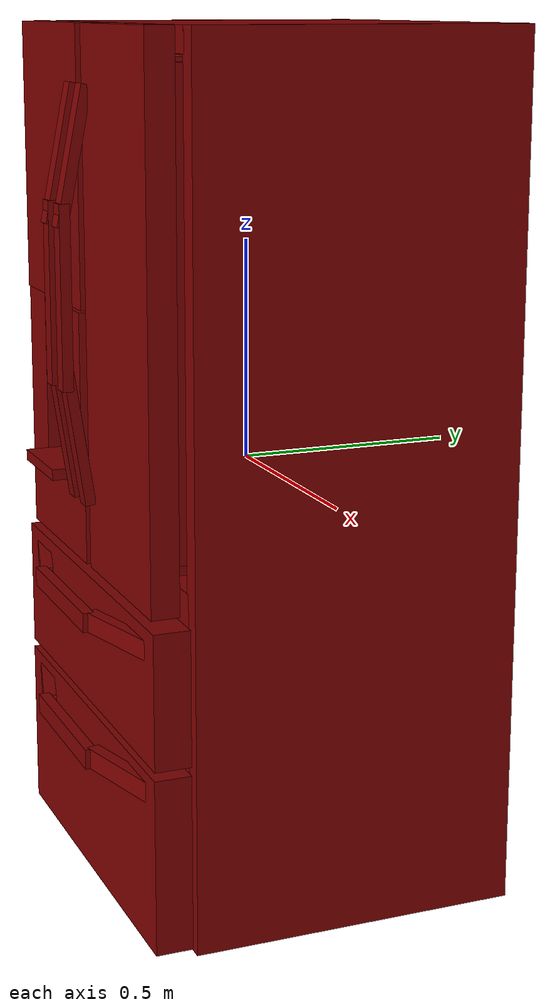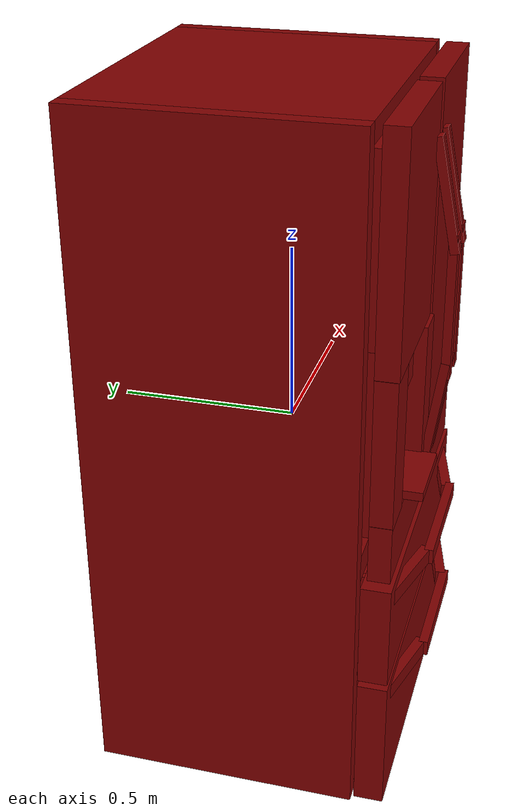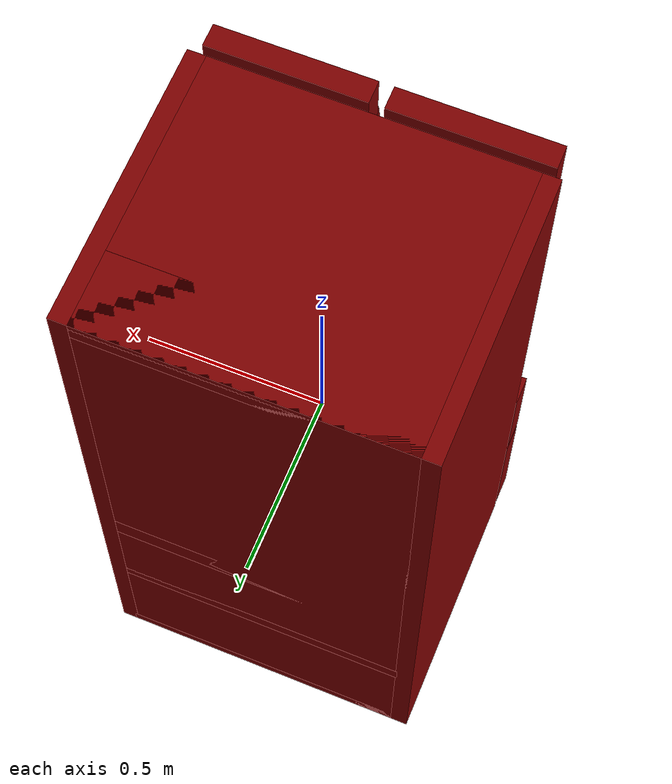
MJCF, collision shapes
<?xml version='1.0' encoding='UTF-8'?>
<mujoco model="model">
  <option timestep="0.002" gravity="0.0 0.0 -9.81"/>
  <compiler angle="radian"/>
  <asset>
    <mesh file="visuals/freezer0.obj" name="freezer0_vis"/>
    <mesh file="visuals/freezer1.obj" name="freezer1_vis"/>
    <mesh file="visuals/fridge_drawer0.obj" name="fridge_drawer0_vis"/>
    <mesh file="visuals/fridge_left_door.obj" name="fridge_left_door_vis"/>
    <mesh file="visuals/fridge_right_door.obj" name="fridge_right_door_vis"/>
    <mesh file="visuals/fridge_right_door_Clear.obj" name="fridge_right_door_Clear_vis"/>
    <mesh file="visuals/Body001.obj" name="Body001_vis"/>
    <mesh file="visuals/Body001_Clear.obj" name="Body001_Clear_vis"/>
    <texture file="visuals/T_BC001.png" name="Body001_material" type="2d"/>
    <material name="Body001_material" rgba="1 1 1 1.0" texture="Body001_material" shininess="0.1" specular="5"/>
    <texture file="visuals/T_BC001.png" name="freezer0_material" type="2d"/>
    <material name="freezer0_material" rgba="1 1 1 1.0" texture="freezer0_material" shininess="0.1" specular="5"/>
    <texture file="visuals/T_BC001.png" name="freezer1_material" type="2d"/>
    <material name="freezer1_material" rgba="1 1 1 1.0" texture="freezer1_material" shininess="0.1" specular="5"/>
    <texture file="visuals/T_BC001.png" name="fridge_drawer0_material" type="2d"/>
    <material name="fridge_drawer0_material" rgba="1 1 1 1.0" texture="fridge_drawer0_material" shininess="0.1" specular="5"/>
    <texture file="visuals/T_BC001.png" name="fridge_left_door_material" type="2d"/>
    <material name="fridge_left_door_material" rgba="1 1 1 1.0" texture="fridge_left_door_material" shininess="0.1" specular="5"/>
    <texture file="visuals/T_BC001.png" name="fridge_right_door_material" type="2d"/>
    <material name="fridge_right_door_material" rgba="1 1 1 1.0" texture="fridge_right_door_material" shininess="0.1" specular="5"/>
    <material name="fridge_right_door_Clear_material" rgba="0.7829207181930542 0.7829207181930542 0.7829207181930542 0.699999988079071" shininess="0.2512328028678894" specular="0.3103448502657381"/>
    <material name="Body001_Clear_material" rgba="0.7829207181930542 0.7829207181930542 0.7829207181930542 0.699999988079071" shininess="0.2512328028678894" specular="0.3103448502657381"/>
  </asset>
  <default>
    <default class="visual">
      <geom conaffinity="0" contype="0" group="1" type="mesh"/>
    </default>
    <default class="collision">
      <geom group="0" rgba="0.5 0 0 0.5"/>
    </default>
    <default class="spawn">
      <geom group="0" rgba="1 1 1 0.5" contype="0" conaffinity="0"/>
      <site group="0" rgba="1 1 1 0.5"/>
    </default>
    <default class="region">
      <geom group="1" conaffinity="0" contype="0" rgba="0 1 0 0"/>
    </default>
  </default>
  <worldbody>
    <body>
      <body name="object">
        <geom mesh="Body001_vis" type="mesh" solimp="0.998 0.998 0.001" solref="0.001 1" friction="0.95 0.3 0.1" class="visual" material="Body001_material"/>
        <geom class="collision" type="box" pos="0.0006654927274212241 0.05615266412496567 0.5888007879257202" size="0.40937232971191406 0.19231247901916504 0.005514178425073624" quat="1.0 0.0 0.0 0.0"/>
        <geom class="collision" type="box" pos="0.0006654927274212241 0.05615266412496567 0.20450350642204285" size="0.40937232971191406 0.19231247901916504 0.005514178425073624" quat="1.0 0.0 0.0 0.0"/>
        <geom class="collision" type="box" pos="-0.43239063024520874 0.0789387971162796 2.281851152474701e-09" size="0.025050994008779526 0.37569648027420044 0.9743537306785583" quat="1.0 0.0 0.0 0.0"/>
        <geom class="collision" type="box" pos="0.43343523144721985 0.0789387971162796 2.281851152474701e-09" size="0.024006403982639313 0.37569648027420044 0.9743537306785583" quat="1.0 0.0 0.0 0.0"/>
        <geom class="collision" type="box" pos="0.002809131983667612 0.35418015718460083 2.281851152474701e-09" size="0.4140954911708832 0.10045510530471802 0.9743537306785583" quat="1.0 0.0 0.0 0.0"/>
        <geom class="collision" type="box" pos="0.0028091389685869217 0.0789387971162796 0.9467322826385498" size="0.4140954911708832 0.37569648027420044 0.027621673420071602" quat="1.0 0.0 0.0 0.0"/>
        <geom class="collision" type="box" pos="0.002809138037264347 0.0789387971162796 -0.21230341494083405" size="0.4140954911708832 0.37569648027420044 0.038041457533836365" quat="1.0 0.0 0.0 0.0"/>
        <geom class="collision" type="box" pos="0.002809138037264347 0.0789387971162796 -0.5444928407669067" size="0.4140954911708832 0.37569648027420044 0.026665542274713516" quat="1.0 0.0 0.0 0.0"/>
        <geom class="collision" type="box" pos="0.0028091371059417725 0.0789387971162796 -0.9559710025787354" size="0.4140954911708832 0.37569648027420044 0.018382761627435684" quat="1.0 0.0 0.0 0.0"/>
        <geom class="collision" type="box" pos="-0.3977801501750946 0.03480931371450424 0.5585342645645142" size="0.0075620138086378574 0.22568455338478088 0.027275606989860535" quat="1.0 0.0 0.0 0.0"/>
        <geom class="collision" type="box" pos="-0.3977801501750946 0.02478325366973877 0.3838809132575989" size="0.0075620138086378574 0.23571060597896576 0.027275606989860535" quat="1.0 0.0 0.0 0.0"/>
        <geom class="collision" type="box" pos="-0.3977801501750946 0.02478325366973877 -0.0023946017026901245" size="0.0075620138086378574 0.23571060597896576 0.027275606989860535" quat="1.0 0.0 0.0 0.0"/>
        <geom class="collision" type="box" pos="-0.3977801501750946 0.02478324994444847 0.17225873470306396" size="0.0075620138086378574 0.23571060597896576 0.027275606989860535" quat="1.0 0.0 0.0 0.0"/>
        <geom class="collision" type="box" pos="0.39763379096984863 0.02478324994444847 0.17225873470306396" size="0.0075620138086378574 0.23571060597896576 0.027275606989860535" quat="1.0 0.0 0.0 0.0"/>
        <geom class="collision" type="box" pos="0.39763379096984863 0.02478325366973877 -0.0023946017026901245" size="0.0075620138086378574 0.23571060597896576 0.027275606989860535" quat="1.0 0.0 0.0 0.0"/>
        <geom class="collision" type="box" pos="0.39763379096984863 0.02478325366973877 0.3838809132575989" size="0.0075620138086378574 0.23571060597896576 0.027275606989860535" quat="1.0 0.0 0.0 0.0"/>
        <geom class="collision" type="box" pos="0.39763379096984863 0.03480931371450424 0.5585342645645142" size="0.0075620138086378574 0.22568455338478088 0.027275606989860535" quat="1.0 0.0 0.0 0.0"/>
        <geom class="collision" type="box" pos="0.0028091389685869217 -0.0073231663554906845 0.9188090562820435" size="0.1594373732805252 0.16066031157970428 0.00796419195830822" quat="1.0 0.0 0.0 0.0"/>
        <body name="freezer0">
          <geom class="region" name="reg_freezer0" type="box" pos="-0.0013597309589385986 -0.09237458184361458 -0.7517581582069397" size="0.34636629915237427 0.19313483855128288 0.16022856330871582"/>
          <joint axis="0.0 -1.0 0.0" pos="-5.4772979041217695e-08 -0.11758746206760406 -0.7575267553329468" limited="true" name="freezer0_door_joint" range="0.0 0.4" type="slide" damping="1" frictionloss="1" armature=".01" stiffness="0.05"/>
          <geom mesh="freezer0_vis" type="mesh" solimp="0.998 0.998 0.001" solref="0.001 1" friction="0.95 0.3 0.1" class="visual" material="freezer0_material"/>
          <geom class="collision" type="box" pos="0.0006083666230551898 -0.09320656955242157 -0.9239939451217651" size="0.35936403274536133 0.20855751633644104 0.0044151670299470425" quat="1.0 0.0 0.0 0.0"/>
          <geom class="collision" type="box" pos="0.3686133325099945 -0.06713901460170746 -0.7525335550308228" size="0.008640914224088192 0.2404424399137497 0.16708417236804962" quat="1.0 0.0 0.0 0.0"/>
          <geom class="collision" type="box" pos="-0.00023537719971500337 -0.3052603602409363 -0.7556809782981873" size="0.18085241317749023 0.3740488588809967 0.0035023794043809175" quat="0.4905640780925751 0.5092608332633972 -0.4905611574649811 0.5092642307281494"/>
          <geom class="collision" type="box" pos="-0.00023408143897540867 0.16065528988838196 -0.8216227889060974" size="0.11349354684352875 0.3740488588809967 0.003861266653984785" quat="0.37202736735343933 -0.6013256907463074 0.6013337969779968 0.37202250957489014"/>
          <geom class="collision" type="box" pos="-1.3189855962991714e-07 -0.34826090931892395 -0.7575268745422363" size="0.45744144916534424 0.04144240915775299 0.19901543855667114" quat="1.0 0.0 0.0 0.0" name="freezer0_door_main"/>
          <geom class="collision" type="box" pos="-0.0030822562985122204 -0.4421125054359436 -0.6056478023529053" size="0.18589089810848236 0.01306017767637968 0.02261965163052082" quat="1.0 0.0 0.0 0.0" name="freezer0_door_handle_main"/>
          <geom class="collision" type="box" pos="-0.30894798040390015 -0.39824309945106506 -0.6059889793395996" size="0.14072267711162567 0.014652024023234844 0.02227095142006874" quat="0.9923864603042603 0.0 0.0 -0.12316303700208664" name="freezer0_door_handle_1"/>
          <geom class="collision" type="box" pos="0.30305591225624084 -0.3985201418399811 -0.6056209802627563" size="0.14072267711162567 0.01493772678077221 0.022638944908976555" quat="0.9923864006996155 0.0 0.0 0.12316328287124634" name="freezer0_door_handle_2"/>
          <geom class="collision" type="box" pos="-0.3673965632915497 -0.06713901460170746 -0.7525335550308228" size="0.008640915155410767 0.24046066403388977 0.1672159731388092" quat="1.0 0.0 0.0 0.0"/>
          <geom class="collision" type="box" pos="0.0005800336366519332 0.21518729627132416 -0.6614482998847961" size="0.3721744120121002 0.005317181348800659 0.07658029347658157" quat="1.0 0.0 0.0 0.0"/>
        </body>
        <body name="freezer1">
          <geom class="region" name="reg_freezer1" type="box" pos="-0.0013597309589385986 -0.09237458184361458 -0.3810538202524185" size="0.34636629915237427 0.19313483855128288 0.1171111444234848"/>
          <joint axis="0.0 -1.0 0.0" pos="-2.463909076766413e-08 -0.1173470988869667 -0.38834065198898315" limited="true" name="freezer1_door_joint" range="0.0 0.4" type="slide" damping="1" frictionloss="1" armature=".01" stiffness="0.05"/>
          <geom mesh="freezer1_vis" type="mesh" solimp="0.998 0.998 0.001" solref="0.001 1" friction="0.95 0.3 0.1" class="visual" material="freezer1_material"/>
          <geom class="collision" type="box" pos="0.0 -0.34782081842422485 -0.388280987739563" size="0.45744162797927856 0.04100235179066658 0.1508244276046753" quat="1.0 0.0 0.0 0.0" name="freezer1_door_main"/>
          <geom class="collision" type="box" pos="-0.0030822562985122204 -0.4416618049144745 -0.28972965478897095" size="0.18589089810848236 0.012609447352588177 0.021864306181669235" quat="1.0 0.0 0.0 0.0" name="freezer1_door_handle_main"/>
          <geom class="collision" type="box" pos="-0.30886685848236084 -0.3979213237762451 -0.28972965478897095" size="0.14072267711162567 0.01432017795741558 0.021856945008039474" quat="0.9923864603042603 0.0 0.0 -0.12316303700208664" name="freezer1_door_handle_1"/>
          <geom class="collision" type="box" pos="0.30295634269714355 -0.39812520146369934 -0.28972965478897095" size="0.14072267711162567 0.014530442655086517 0.021856945008039474" quat="0.9923864006996155 0.0 0.0 0.12316328287124634" name="freezer1_door_handle_2"/>
          <geom class="collision" type="box" pos="-0.00023407801927533 0.1679583042860031 -0.4062451422214508" size="0.11459759622812271 0.3740488886833191 0.006074460688978434" quat="0.37202736735343933 -0.6013256907463074 0.6013337969779968 0.37202250957489014"/>
          <geom class="collision" type="box" pos="-0.00023537360539194196 -0.3052603602409363 -0.381129652261734" size="0.12921546399593353 0.3740488588809967 0.0035026802215725183" quat="0.4905640780925751 0.5092608332633972 -0.4905611574649811 0.5092642307281494"/>
          <geom class="collision" type="box" pos="0.0005800426006317139 0.21518729627132416 -0.2900519073009491" size="0.3721744418144226 0.005317189730703831 0.032599397003650665" quat="1.0 0.0 0.0 0.0"/>
          <geom class="collision" type="box" pos="0.3686133325099945 -0.06713901460170746 -0.3809087872505188" size="0.008640914224088192 0.24046143889427185 0.12334893643856049" quat="1.0 0.0 0.0 0.0"/>
          <geom class="collision" type="box" pos="-0.3673965632915497 -0.06713901460170746 -0.3809087872505188" size="0.008640915155410767 0.24046170711517334 0.12346427142620087" quat="1.0 0.0 0.0 0.0"/>
          <geom class="collision" type="box" pos="0.0006083666230551898 -0.09320656955242157 -0.5086162090301514" size="0.35936403274536133 0.20855751633644104 0.004415780305862427" quat="1.0 0.0 0.0 0.0"/>
        </body>
        <body name="fridge_drawer0">
          <geom class="region" name="reg_fridge_drawer0" type="box" pos="0.002443835139274597 0.011486493051052094 0.0035110078752040863" size="0.28600117361545563 0.20450006967782974 0.12949386408925057"/>
          <joint axis="0.0 -1.0 0.0" pos="-0.0028584750834852457 0.0022408217191696167 0.008335612714290619" limited="true" name="fridge_drawer0_joint" range="0.0 0.4" type="slide" damping="1" frictionloss="1" armature=".01" stiffness="0.05"/>
          <geom mesh="fridge_drawer0_vis" type="mesh" solimp="0.998 0.998 0.001" solref="0.001 1" friction="0.95 0.3 0.1" class="visual" material="fridge_drawer0_material"/>
          <geom class="collision" type="box" pos="-0.0018615599256008863 -0.21263664960861206 0.11792048811912537" size="0.30760201811790466 0.014628909528255463 0.05263250321149826" quat="1.0 0.0 0.0 0.0"/>
          <geom class="collision" type="box" pos="-0.002474024659022689 0.013149255886673927 -0.13450539112091064" size="0.2902950942516327 0.2111547440290451 0.00416182354092598" quat="1.0 0.0 0.0 0.0"/>
          <geom class="collision" type="box" pos="0.00050507509149611 0.22799749672412872 0.0011797472834587097" size="0.2904875874519348 0.005564833991229534 0.1347522735595703" quat="1.0 0.0 0.0 0.0"/>
          <geom class="collision" type="box" pos="-0.29894906282424927 0.015612324699759483 0.002210605889558792" size="0.006310629658401012 0.21361808478832245 0.13578325510025024" quat="1.0 0.0 0.0 0.0"/>
          <geom class="collision" type="box" pos="0.29438215494155884 0.02131838910281658 0.0022106077522039413" size="0.006310643628239632 0.2193242758512497 0.1357833743095398" quat="1.0 0.0 0.0 0.0"/>
          <geom class="collision" type="box" pos="-0.0018615599256008863 -0.2126377820968628 -0.0828283280134201" size="0.30764204263687134 0.014630107209086418 0.07450395077466965" quat="1.0 0.0 0.0 0.0"/>
          <geom class="collision" type="box" pos="-0.1794939488172531 -0.212637796998024 0.026925262063741684" size="0.1300179660320282 0.01463015004992485 0.03786812722682953" quat="1.0 0.0 0.0 0.0"/>
          <geom class="collision" type="box" pos="0.2017325609922409 -0.21263782680034637 0.026925262063741684" size="0.1028108075261116 0.014630201272666454 0.03786814957857132" quat="1.0 0.0 0.0 0.0"/>
          <geom class="collision" type="box" pos="0.026203811168670654 -0.22475449740886688 0.052468083798885345" size="0.07455941289663315 0.0025141423102468252 0.01256746519356966" quat="1.0 0.0 0.0 0.0"/>
          <geom class="collision" type="box" pos="0.026203811168670654 -0.19889093935489655 0.027250539511442184" size="0.0745597779750824 0.000883451197296381 0.03660789132118225" quat="1.0 0.0 0.0 0.0"/>
        </body>
        <body name="fridge_left_door">
          <joint axis="0.0 0.0 -1.0" pos="-0.40305250883102417 -0.34666505455970764 0.37841489911079407" limited="true" name="fridge_left_door_joint" range="0.0 1.5707963267948966" type="hinge" damping="1" frictionloss="1" armature=".01" stiffness="0.05"/>
          <geom mesh="fridge_left_door_vis" type="mesh" solimp="0.998 0.998 0.001" solref="0.001 1" friction="0.95 0.3 0.1" class="visual" material="fridge_left_door_material"/>
          <geom class="collision" type="box" pos="-0.22949627041816711 -0.3516943156719208 0.6658487319946289" size="0.20845761895179749 0.03155607730150223 0.3085051476955414" quat="1.0 0.0 0.0 0.0" name="fridge_left_door_main"/>
          <geom class="collision" type="box" pos="-0.043255966156721115 -0.4387055039405823 0.39825060963630676" size="0.020025629550218582 0.012182285077869892 0.20292799174785614" quat="1.0 0.0 0.0 0.0" name="fridge_left_door_handle_main"/>
          <geom class="collision" type="box" pos="-0.04368552938103676 -0.4142951965332031 0.6992678642272949" size="0.15277734398841858 0.012184272520244122 0.020025623962283134" quat="0.7036940455436707 -0.06938757747411728 0.7036941051483154 -0.06938757747411728" name="fridge_left_door_handle_1"/>
          <geom class="collision" type="box" pos="-0.04342835023999214 -0.4153255522251129 0.08840882033109665" size="0.15271838009357452 0.012182695791125298 0.020025666803121567" quat="0.705168604850769 0.05231887102127075 0.7051685452461243 0.05231887102127075" name="fridge_left_door_handle_2"/>
          <geom class="collision" type="box" pos="-0.22737178206443787 -0.2903779447078705 0.37775924801826477" size="0.14489077031612396 0.020536476746201515 0.5126291513442993" quat="1.0 0.0 0.0 0.0"/>
          <geom class="collision" type="box" pos="-0.22983205318450928 -0.2701058089733124 0.6600713729858398" size="0.16895322501659393 0.046253252774477005 0.24985185265541077" quat="1.0 0.0 0.0 0.0"/>
          <geom class="collision" type="box" pos="-0.22984567284584045 -0.35054901242256165 -0.13871297240257263" size="0.20880651473999023 0.030410680919885635 0.08287671208381653" quat="1.0 0.0 0.0 0.0"/>
          <geom class="collision" type="box" pos="-0.3748109042644501 -0.35059499740600586 0.14636197686195374" size="0.0626794621348381 0.03045680746436119 0.2097291201353073" quat="1.0 0.0 0.0 0.0"/>
          <geom class="collision" type="box" pos="-0.052935484796762466 -0.35635867714881897 0.14636196196079254" size="0.04649600014090538 0.03622039034962654 0.20972852408885956" quat="1.0 0.0 0.0 0.0"/>
          <geom class="collision" type="box" pos="-0.2095235139131546 -0.33079081773757935 0.3130360245704651" size="0.054677631705999374 0.035663824528455734 0.07370862364768982" quat="1.0 0.0 0.0 0.0"/>
          <geom class="collision" type="box" pos="-0.20344950258731842 -0.3709101676940918 -0.026633242145180702" size="0.10819727182388306 0.06406967341899872 0.012450749054551125" quat="1.0 0.0 0.0 0.0"/>
          <geom class="collision" type="box" pos="-0.2095235139131546 -0.3115566074848175 0.21992382407188416" size="0.02860577218234539 0.014527716673910618 0.03002556413412094" quat="1.0 0.0 0.0 0.0"/>
          <geom class="collision" type="box" pos="-0.23664847016334534 -0.23723644018173218 0.2317027449607849" size="0.14483046531677246 0.0038390583358705044 0.0443267822265625" quat="1.0 0.0 0.0 0.0"/>
          <geom class="collision" type="box" pos="-0.23664847016334534 -0.25695809721946716 0.1932295262813568" size="0.14483046531677246 0.016660405322909355 0.005856577306985855" quat="1.0 0.0 0.0 0.0"/>
          <geom class="collision" type="box" pos="-0.37607118487358093 -0.2550935447216034 0.23429983854293823" size="0.005407749209553003 0.021083654835820198 0.046924151480197906" quat="1.0 0.0 0.0 0.0"/>
          <geom class="collision" type="box" pos="-0.09749902784824371 -0.2550935447216034 0.23429983854293823" size="0.005407749209553003 0.021083654835820198 0.04692428559064865" quat="1.0 0.0 0.0 0.0"/>
        </body>
        <body name="fridge_right_door">
          <joint axis="0.0 0.0 1.0" pos="0.41050735116004944 -0.3474642038345337 0.3784147799015045" limited="true" name="fridge_right_door_joint" range="0.0 1.5707963267948966" type="hinge" damping="1" frictionloss="1" armature=".01" stiffness="0.05"/>
          <geom mesh="fridge_right_door_vis" type="mesh" solimp="0.998 0.998 0.001" solref="0.001 1" friction="0.95 0.3 0.1" class="visual" material="fridge_right_door_material"/>
          <geom class="collision" type="box" pos="0.23141421377658844 -0.30522629618644714 0.25686919689178467" size="0.15337137877941132 0.001518690842203796 0.037437066435813904" quat="1.0 0.0 0.0 0.0"/>
          <geom class="collision" type="box" pos="0.23141421377658844 -0.20369039475917816 0.25157129764556885" size="0.14881138503551483 0.001518699456937611 0.03213917091488838" quat="1.0 0.0 0.0 0.0"/>
          <geom class="collision" type="box" pos="0.08318133652210236 -0.25338324904441833 0.2540512681007385" size="0.0035103464033454657 0.053215499967336655 0.034619156271219254" quat="1.0 0.0 0.0 0.0"/>
          <geom class="collision" type="box" pos="0.38055282831192017 -0.25338324904441833 0.2540512681007385" size="0.0035103464033454657 0.05321575328707695 0.034619156271219254" quat="1.0 0.0 0.0 0.0"/>
          <geom class="collision" type="box" pos="0.23141421377658844 -0.30522629618644714 0.5099889039993286" size="0.15337137877941132 0.0015187225071713328 0.037437066435813904" quat="1.0 0.0 0.0 0.0"/>
          <geom class="collision" type="box" pos="0.23141421377658844 -0.20369039475917816 0.5046910047531128" size="0.14881138503551483 0.001518729724921286 0.03213917091488838" quat="1.0 0.0 0.0 0.0"/>
          <geom class="collision" type="box" pos="0.08318133652210236 -0.25338324904441833 0.5071709156036377" size="0.0035103464033454657 0.053216513246297836 0.034619156271219254" quat="1.0 0.0 0.0 0.0"/>
          <geom class="collision" type="box" pos="0.38055282831192017 -0.25338324904441833 0.5071709156036377" size="0.0035103464033454657 0.05321676656603813 0.034619156271219254" quat="1.0 0.0 0.0 0.0"/>
          <geom class="collision" type="box" pos="0.23141421377658844 -0.17485778033733368 0.8018209934234619" size="0.14881138503551483 0.0015187541721388698 0.03213917091488838" quat="1.0 0.0 0.0 0.0"/>
          <geom class="collision" type="box" pos="0.08312533795833588 -0.23516219854354858 0.8043009042739868" size="0.004710578825324774 0.06697990745306015 0.034619156271219254" quat="1.0 0.0 0.0 0.0"/>
          <geom class="collision" type="box" pos="0.38220059871673584 -0.23708322644233704 0.8043009042739868" size="0.0042063514702022076 0.06575009971857071 0.034619156271219254" quat="1.0 0.0 0.0 0.0"/>
          <geom class="collision" type="box" pos="0.08312533795833588 -0.2414541393518448 0.8673205375671387" size="0.004710578825324774 0.060688458383083344 0.034619156271219254" quat="1.0 0.0 0.0 0.0"/>
          <geom class="collision" type="box" pos="0.38215941190719604 -0.23516219854354858 0.8043009042739868" size="0.004710578825324774 0.06698066741228104 0.034619156271219254" quat="1.0 0.0 0.0 0.0"/>
          <geom class="collision" type="box" pos="0.38215941190719604 -0.2414541393518448 0.8673205375671387" size="0.004710578825324774 0.060688965022563934 0.034619156271219254" quat="1.0 0.0 0.0 0.0"/>
          <geom class="collision" type="box" pos="0.23264236748218536 -0.23411042988300323 0.7765291929244995" size="0.14480642974376678 0.06803295016288757 0.006220254581421614" quat="1.0 0.0 0.0 0.0"/>
          <geom class="collision" type="box" pos="0.23248694837093353 -0.25190040469169617 0.8969229459762573" size="0.14462853968143463 0.0502481646835804 0.003077739616855979" quat="1.0 0.0 0.0 0.0"/>
          <geom class="collision" type="box" pos="0.23248694837093353 -0.1919376254081726 0.8594681024551392" size="0.05016378313302994 0.0031052634585648775 0.14465102553367615" quat="0.6771653890609741 0.2035851776599884 0.6771655678749084 0.20358510315418243"/>
          <geom class="collision" type="box" pos="0.23233634233474731 -0.17049956321716309 0.7953920364379883" size="0.14462900161743164 0.0031011635437607765 0.025584066286683083" quat="1.0 0.0 0.0 0.0"/>
          <geom class="collision" type="box" pos="0.2233191877603531 -0.3516943156719208 0.37861859798431396" size="0.20651549100875854 0.03155607730150223 0.5957353115081787" quat="1.0 0.0 0.0 0.0" name="fridge_right_door_main"/>
          <geom class="collision" type="box" pos="0.04022764414548874 -0.4387055039405823 0.39825060963630676" size="0.020025629550218582 0.012182312086224556 0.20292851328849792" quat="1.0 0.0 0.0 0.0" name="fridge_right_door_handle_main"/>
          <geom class="collision" type="box" pos="0.0397980622947216 -0.4142951965332031 0.6992678642272949" size="0.15277734398841858 0.012184272520244122 0.020025623962283134" quat="0.7036940455436707 -0.06938757747411728 0.7036941051483154 -0.06938757747411728" name="fridge_right_door_handle_1"/>
          <geom class="collision" type="box" pos="0.04005524143576622 -0.4153255522251129 0.08840882033109665" size="0.15271838009357452 0.012182695791125298 0.020025666803121567" quat="0.705168604850769 0.05231887102127075 0.7051685452461243 0.05231887102127075" name="fridge_right_door_handle_2"/>
          <geom class="collision" type="box" pos="0.23107843101024628 -0.28338780999183655 0.9090375900268555" size="0.16718634963035583 0.03298664465546608 0.00502949021756649" quat="1.0 0.0 0.0 0.0"/>
          <geom class="collision" type="box" pos="0.23107843101024628 -0.2828749418258667 -0.12705786526203156" size="0.16718634963035583 0.03298664465546608 0.010212471708655357" quat="1.0 0.0 0.0 0.0"/>
          <geom class="collision" type="box" pos="0.07154716551303864 -0.2828749418258667 0.3933747708797455" size="0.007655085995793343 0.03298664465546608 0.5100640654563904" quat="1.0 0.0 0.0 0.0"/>
          <geom class="collision" type="box" pos="0.3910381495952606 -0.2828749418258667 0.3933747708797455" size="0.007655085995793343 0.03298664465546608 0.5100640654563904" quat="1.0 0.0 0.0 0.0"/>
          <body name="fridge_right_door_Clear">
            <geom mesh="fridge_right_door_Clear_vis" type="mesh" solimp="0.998 0.998 0.001" solref="0.001 1" friction="0.95 0.3 0.1" class="visual" material="fridge_right_door_Clear_material"/>
            <geom class="collision" type="box" pos="0.23141421377658844 -0.30522629618644714 0.25686919689178467" size="0.15337137877941132 0.001518690842203796 0.037437066435813904" quat="1.0 0.0 0.0 0.0"/>
            <geom class="collision" type="box" pos="0.23141421377658844 -0.20369039475917816 0.25157129764556885" size="0.14881138503551483 0.001518699456937611 0.03213917091488838" quat="1.0 0.0 0.0 0.0"/>
            <geom class="collision" type="box" pos="0.08318133652210236 -0.25338324904441833 0.2540512681007385" size="0.0035103464033454657 0.053215499967336655 0.034619156271219254" quat="1.0 0.0 0.0 0.0"/>
            <geom class="collision" type="box" pos="0.38055282831192017 -0.25338324904441833 0.2540512681007385" size="0.0035103464033454657 0.05321575328707695 0.034619156271219254" quat="1.0 0.0 0.0 0.0"/>
            <geom class="collision" type="box" pos="0.23141421377658844 -0.30522629618644714 0.5099889039993286" size="0.15337137877941132 0.0015187225071713328 0.037437066435813904" quat="1.0 0.0 0.0 0.0"/>
            <geom class="collision" type="box" pos="0.23141421377658844 -0.20369039475917816 0.5046910047531128" size="0.14881138503551483 0.001518729724921286 0.03213917091488838" quat="1.0 0.0 0.0 0.0"/>
            <geom class="collision" type="box" pos="0.08318133652210236 -0.25338324904441833 0.5071709156036377" size="0.0035103464033454657 0.053216513246297836 0.034619156271219254" quat="1.0 0.0 0.0 0.0"/>
            <geom class="collision" type="box" pos="0.38055282831192017 -0.25338324904441833 0.5071709156036377" size="0.0035103464033454657 0.05321676656603813 0.034619156271219254" quat="1.0 0.0 0.0 0.0"/>
            <geom class="collision" type="box" pos="0.23141421377658844 -0.17485778033733368 0.8018209934234619" size="0.14881138503551483 0.0015187541721388698 0.03213917091488838" quat="1.0 0.0 0.0 0.0"/>
            <geom class="collision" type="box" pos="0.08312533795833588 -0.23516219854354858 0.8043009042739868" size="0.004710578825324774 0.06697990745306015 0.034619156271219254" quat="1.0 0.0 0.0 0.0"/>
            <geom class="collision" type="box" pos="0.38220059871673584 -0.23708322644233704 0.8043009042739868" size="0.0042063514702022076 0.06575009971857071 0.034619156271219254" quat="1.0 0.0 0.0 0.0"/>
            <geom class="collision" type="box" pos="0.08312533795833588 -0.2414541393518448 0.8673205375671387" size="0.004710578825324774 0.060688458383083344 0.034619156271219254" quat="1.0 0.0 0.0 0.0"/>
            <geom class="collision" type="box" pos="0.38215941190719604 -0.23516219854354858 0.8043009042739868" size="0.004710578825324774 0.06698066741228104 0.034619156271219254" quat="1.0 0.0 0.0 0.0"/>
            <geom class="collision" type="box" pos="0.38215941190719604 -0.2414541393518448 0.8673205375671387" size="0.004710578825324774 0.060688965022563934 0.034619156271219254" quat="1.0 0.0 0.0 0.0"/>
            <geom class="collision" type="box" pos="0.23264236748218536 -0.23411042988300323 0.7765291929244995" size="0.14480642974376678 0.06803295016288757 0.006220254581421614" quat="1.0 0.0 0.0 0.0"/>
            <geom class="collision" type="box" pos="0.23248694837093353 -0.25190040469169617 0.8969229459762573" size="0.14462853968143463 0.0502481646835804 0.003077739616855979" quat="1.0 0.0 0.0 0.0"/>
            <geom class="collision" type="box" pos="0.23248694837093353 -0.1919376254081726 0.8594681024551392" size="0.05016378313302994 0.0031052634585648775 0.14465102553367615" quat="0.6771653890609741 0.2035851776599884 0.6771655678749084 0.20358510315418243"/>
            <geom class="collision" type="box" pos="0.23233634233474731 -0.17049956321716309 0.7953920364379883" size="0.14462900161743164 0.0031011635437607765 0.025584066286683083" quat="1.0 0.0 0.0 0.0"/>
          </body>
        </body>
        <body name="Body001_Clear">
          <geom mesh="Body001_Clear_vis" type="mesh" solimp="0.998 0.998 0.001" solref="0.001 1" friction="0.95 0.3 0.1" class="visual" material="Body001_Clear_material"/>
          <geom class="collision" type="box" pos="0.0006654927274212241 0.05615266412496567 0.5888007879257202" size="0.40937232971191406 0.19231247901916504 0.005514178425073624" quat="1.0 0.0 0.0 0.0"/>
          <geom class="collision" type="box" pos="0.0006654927274212241 0.05615266412496567 0.20450350642204285" size="0.40937232971191406 0.19231247901916504 0.005514178425073624" quat="1.0 0.0 0.0 0.0"/>
        </body>
        <geom class="region" name="reg_fridge_shelf0" type="box" pos="-0.00019602477550506592 0.05837142467498779 0.39673303067684174" size="0.38571172749996185 0.18862744963169098 0.18221738731861115"/>
        <geom class="region" name="reg_fridge_shelf1" type="box" pos="0.0012401789426803589 0.05837142467498779 0.7527535259723663" size="0.40360373055934906 0.18862744963169098 0.1537470052242279"/>
        <geom class="region" name="reg_main" type="box" pos="-7.450580596923828e-09 0.03246614336967468 0.0" size="0.45844162797927857 0.42316944694519043 0.9753539094924927"/>
      </body>
    </body>
  </worldbody>
  <actuator>
    <motor name="freezer0_door_joint_actuator" joint="freezer0_door_joint" gear="50"/>
    <motor name="freezer1_door_joint_actuator" joint="freezer1_door_joint" gear="50"/>
    <motor name="fridge_drawer0_joint_actuator" joint="fridge_drawer0_joint" gear="50"/>
    <motor name="fridge_left_door_joint_actuator" joint="fridge_left_door_joint" gear="50"/>
    <motor name="fridge_right_door_joint_actuator" joint="fridge_right_door_joint" gear="50"/>
  </actuator>
</mujoco>
